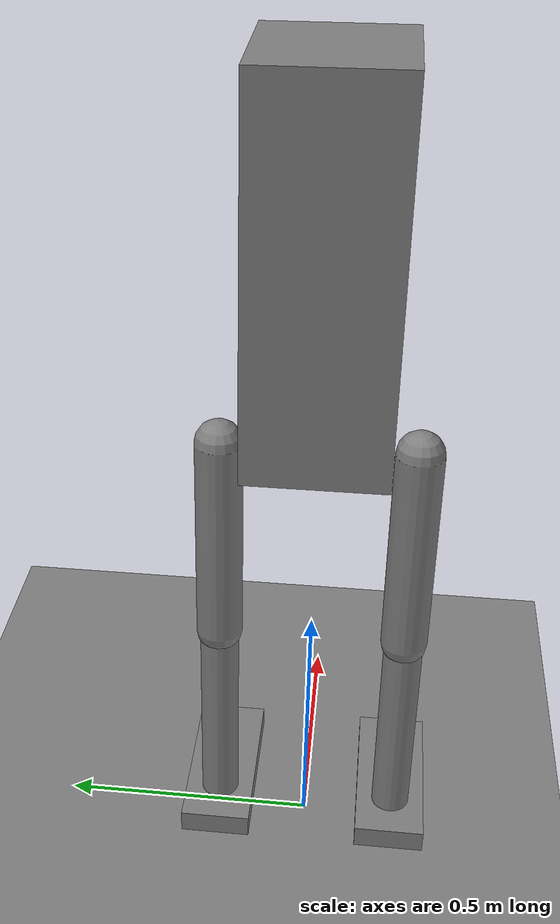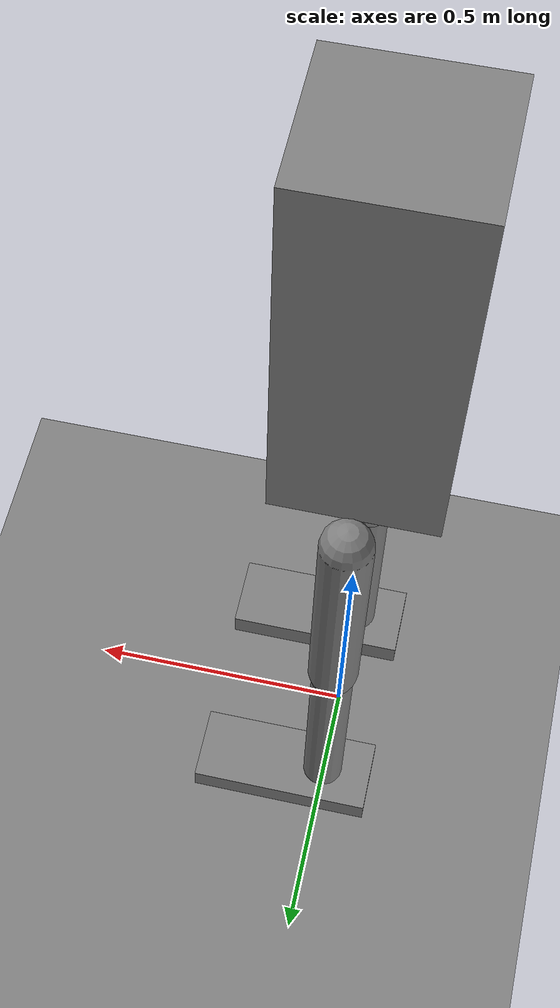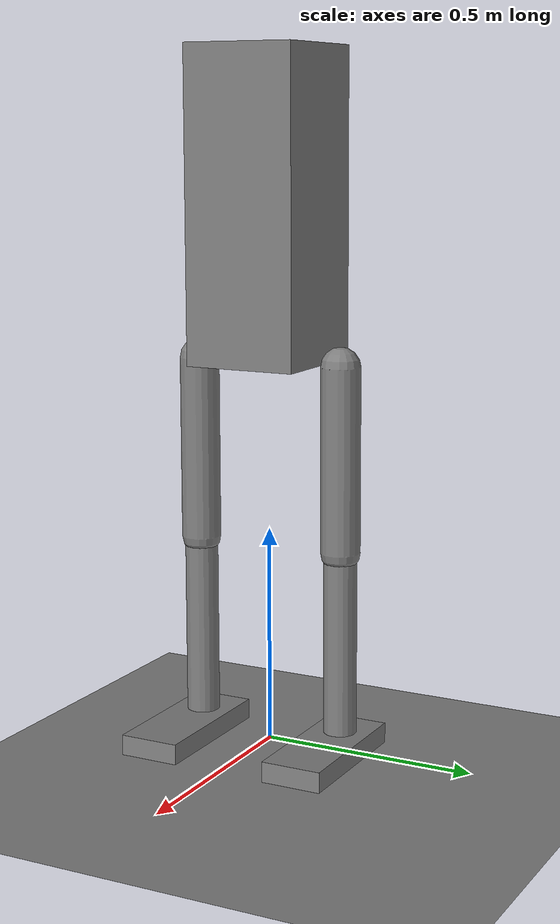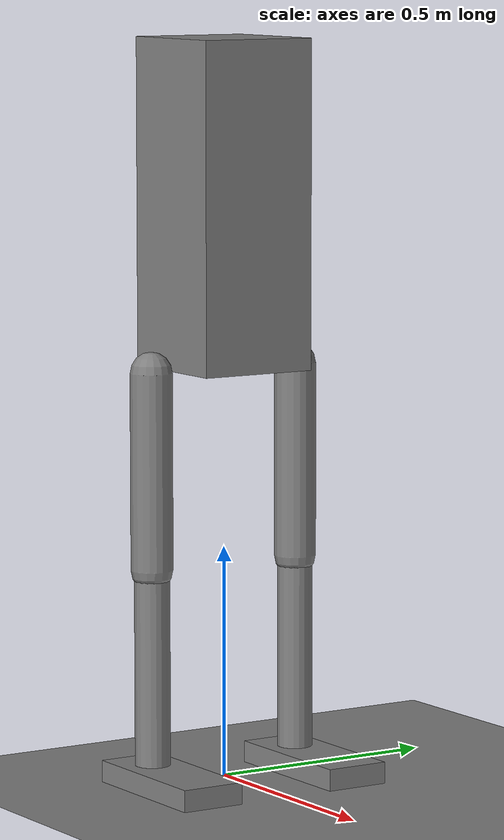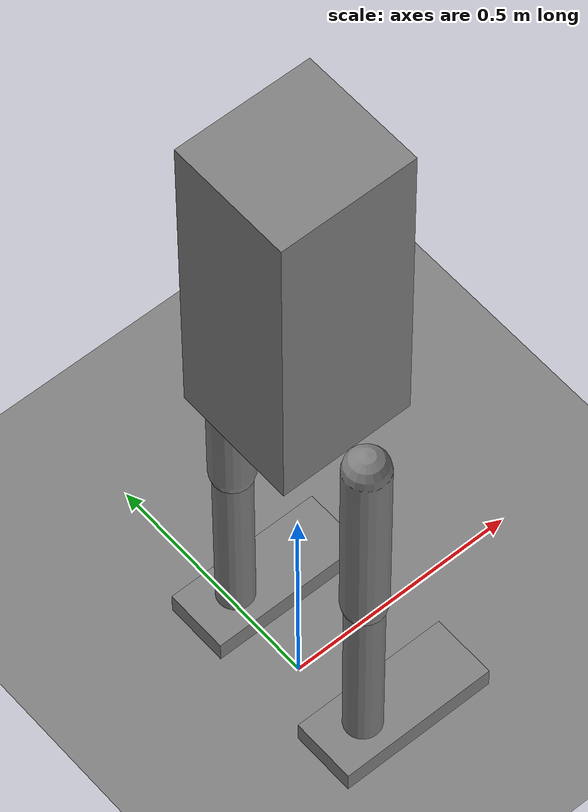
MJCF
<mujoco model="biped-simple">
  <compiler angle="radian"/>
  <option timestep="0.005" gravity="0 0 -9.81" cone="elliptic" solver="PGS"/>

  <default>
    <joint damping="2.0" armature="0.02"/>
    <geom friction="1.2 0.08 0.02" solref="0.02 1" solimp="0.9 0.95 0.001"/>
  </default>

  <worldbody>
    <geom name="ground" type="plane" friction="1.2 0.08 0.02"/>

    <body name="torso" pos="0 0 1.235">
      <freejoint name="torso_root"/>
      <geom name="torso_geom" type="box" size="0.14 0.13 0.35" mass="9.7"/>

      <!-- ============ left leg ============ -->
      <body name="left_hip_roll_link" pos="0 0.18 -0.35">
        <inertial pos="0 0 0" mass="0.05" diaginertia="0.001 0.001 0.001"/>
        <joint name="left_hip_roll" type="hinge" axis="1 0 0"
               range="-0.7 0.7" damping="8.0" armature="0.05"/>

        <body name="left_thigh" pos="0 0 -0.21">
          <joint name="left_hip" type="hinge" axis="0 1 0" pos="0 0 0.21"
                 range="-1.0 1.0"/>
          <geom name="left_thigh_geom" type="capsule" size="0.045 0.21" mass="2.2"/>

          <body name="left_shin" pos="0 0 -0.42">
            <joint name="left_knee" type="hinge" axis="0 1 0" pos="0 0 0.21"
                   range="-0.1 1.7"/>
            <geom name="left_shin_geom" type="capsule" size="0.038 0.21" mass="1.6"/>

            <body name="left_ankle_roll_link" pos="0 0 -0.21">
              <inertial pos="0 0 0" mass="0.03" diaginertia="0.0005 0.0005 0.0005"/>
              <joint name="left_ankle_roll" type="hinge" axis="1 0 0"
                     range="-0.5 0.5" damping="5.0" armature="0.04"/>

              <body name="left_foot" pos="0.075 0 -0.035">
                <joint name="left_ankle" type="hinge" axis="0 1 0"
                       pos="-0.075 0 0.035" range="-0.8 0.8"/>
                <geom name="left_foot_geom" type="box"
                      size="0.17 0.07 0.035" mass="0.8"/>
              </body>
            </body>
          </body>
        </body>
      </body>

      <!-- ============ right leg ============ -->
      <body name="right_hip_roll_link" pos="0 -0.18 -0.35">
        <inertial pos="0 0 0" mass="0.05" diaginertia="0.001 0.001 0.001"/>
        <joint name="right_hip_roll" type="hinge" axis="1 0 0"
               range="-0.7 0.7" damping="8.0" armature="0.05"/>

        <body name="right_thigh" pos="0 0 -0.21">
          <joint name="right_hip" type="hinge" axis="0 1 0" pos="0 0 0.21"
                 range="-1.0 1.0"/>
          <geom name="right_thigh_geom" type="capsule" size="0.045 0.21" mass="2.2"/>

          <body name="right_shin" pos="0 0 -0.42">
            <joint name="right_knee" type="hinge" axis="0 1 0" pos="0 0 0.21"
                   range="-0.1 1.7"/>
            <geom name="right_shin_geom" type="capsule" size="0.038 0.21" mass="1.6"/>

            <body name="right_ankle_roll_link" pos="0 0 -0.21">
              <inertial pos="0 0 0" mass="0.03" diaginertia="0.0005 0.0005 0.0005"/>
              <joint name="right_ankle_roll" type="hinge" axis="1 0 0"
                     range="-0.5 0.5" damping="5.0" armature="0.04"/>

              <body name="right_foot" pos="0.075 0 -0.035">
                <joint name="right_ankle" type="hinge" axis="0 1 0"
                       pos="-0.075 0 0.035" range="-0.8 0.8"/>
                <geom name="right_foot_geom" type="box"
                      size="0.17 0.07 0.035" mass="0.8"/>
              </body>
            </body>
          </body>
        </body>
      </body>
    </body>
  </worldbody>

  <actuator>
    <position name="left_hip_roll_motor"   joint="left_hip_roll"
              kp="70" kv="6" forcerange="-70 70"/>
    <position name="left_hip_motor"        joint="left_hip"
              kp="70" kv="6" forcerange="-70 70"/>
    <position name="left_knee_motor"       joint="left_knee"
              kp="80" kv="6" forcerange="-80 80"/>
    <position name="left_ankle_roll_motor" joint="left_ankle_roll"
              kp="45" kv="5" forcerange="-45 45"/>
    <position name="left_ankle_motor"      joint="left_ankle"
              kp="45" kv="5" forcerange="-45 45"/>

    <position name="right_hip_roll_motor"   joint="right_hip_roll"
              kp="70" kv="6" forcerange="-70 70"/>
    <position name="right_hip_motor"        joint="right_hip"
              kp="70" kv="6" forcerange="-70 70"/>
    <position name="right_knee_motor"       joint="right_knee"
              kp="80" kv="6" forcerange="-80 80"/>
    <position name="right_ankle_roll_motor" joint="right_ankle_roll"
              kp="45" kv="5" forcerange="-45 45"/>
    <position name="right_ankle_motor"      joint="right_ankle"
              kp="45" kv="5" forcerange="-45 45"/>
  </actuator>
</mujoco>
